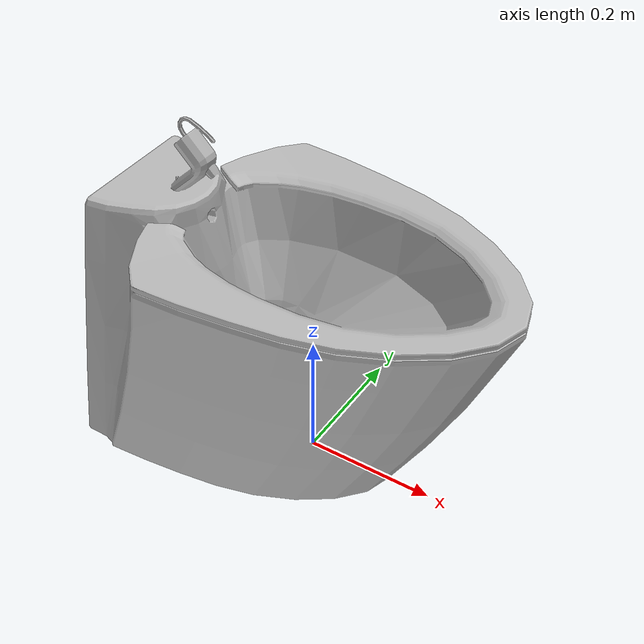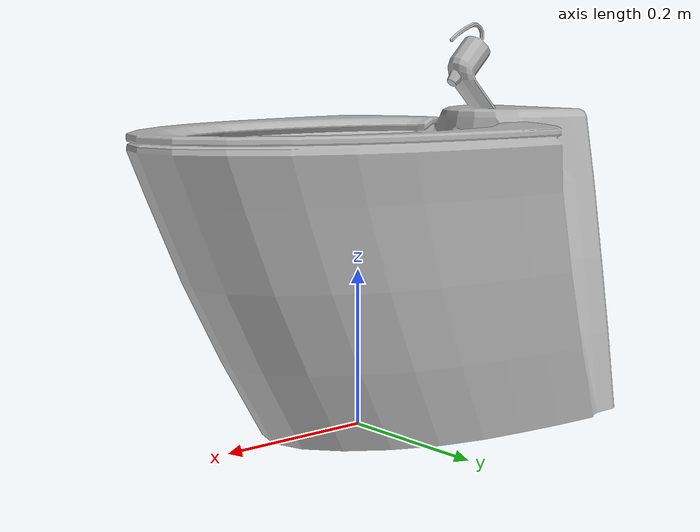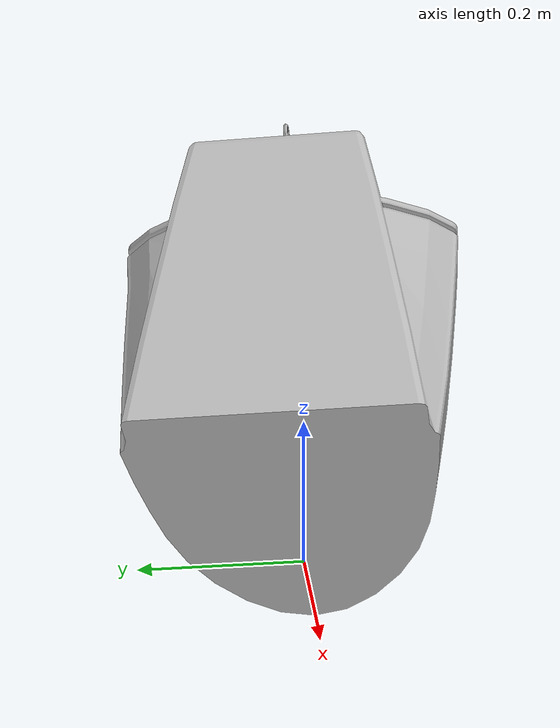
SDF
<?xml version='1.0'?>
<sdf version='1.4'>
  <model name='s__1251'>
    <pose>0 0 0 0 0 0</pose>
    <static>true</static>
    <link name='link'>
      <collision name='collision'>
        <pose>0 0 0 0 0 0</pose>
        <geometry>
          <box>
            <size>0.63 0.41 2</size>
          </box>
        </geometry>
      </collision>
      <visual name='visual'>
        <pose>0 0 0 0 0 0</pose>
        <geometry>
          <mesh><uri>model://s__1251/s__1251.dae</uri></mesh>
        </geometry>
      </visual>
    </link>
  </model>
</sdf>
